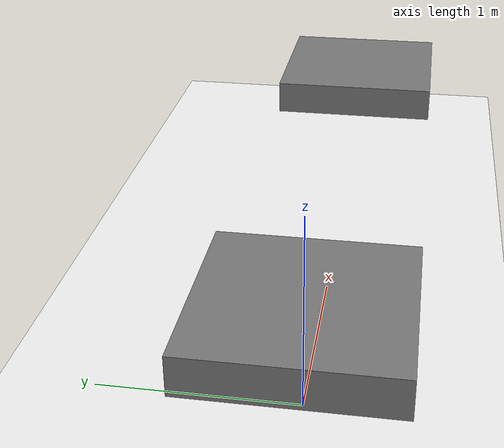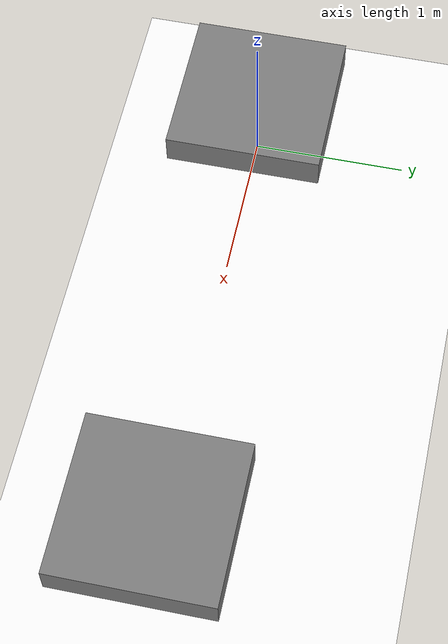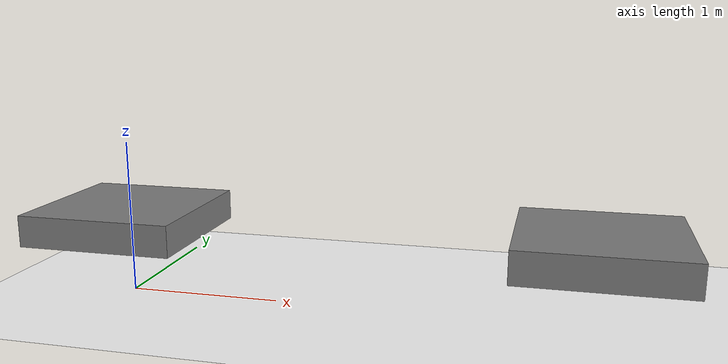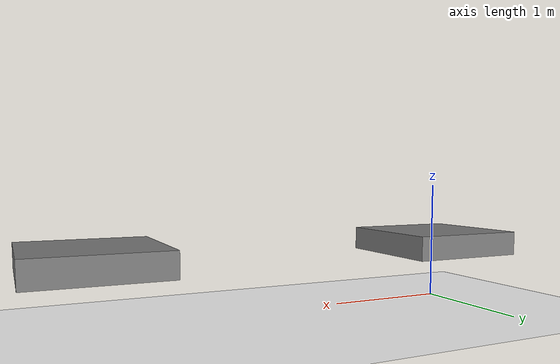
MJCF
<mujoco>
  <option density="1000">
    <flag gravity="disable"/>
  </option>

  <worldbody>
    <geom type="plane" size="10 10 .1" rgba="1 1 1 1"/>
    <light pos="0 0 20"/>
    <body name="body_ball" pos="0 0 .5">
      <geom type="box" size=".5 .5 .1" pos="0 0 0"/>
      <joint name="ball" pos=".5 .5 0" axis="0 0 1" type="ball"/>
    </body>
    <body name="body_free" pos="3 0 .5">
      <freejoint name="free"/>
      <geom type="box" size=".5 .5 .1" pos="0 0 0"/>
    </body>
  </worldbody>

  <actuator>
    <general name="ball" joint="ball" dyntype="integrator" gear="0 0 1" ctrllimited="true" ctrlrange="-100 100"/>
    <general name="free" joint="free" dyntype="integrator" gear="0 0 0 0 0 1" ctrllimited="true" ctrlrange="-100 100"/>
  </actuator>
</mujoco>
